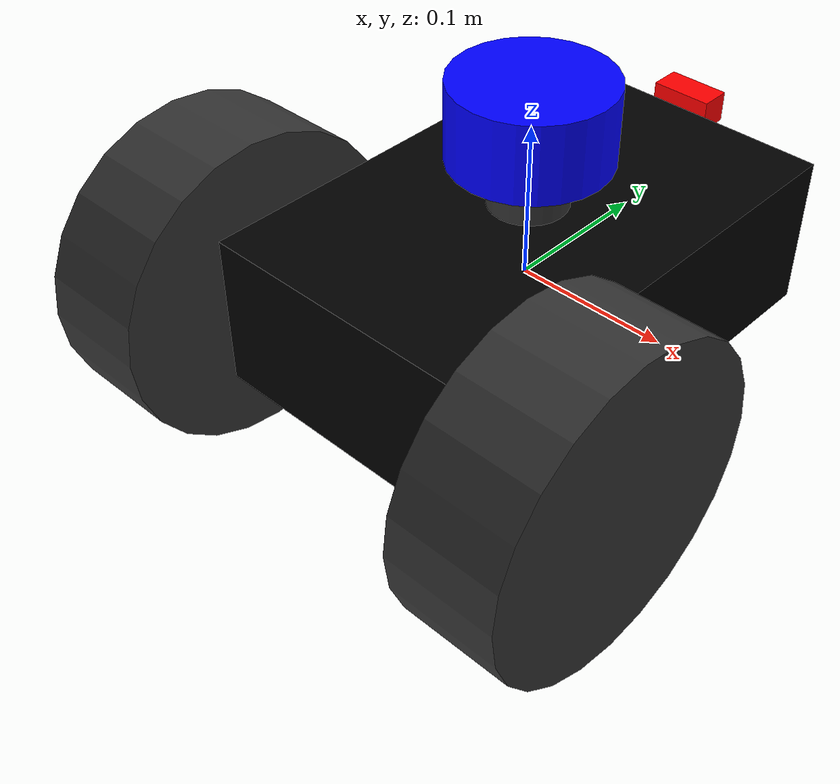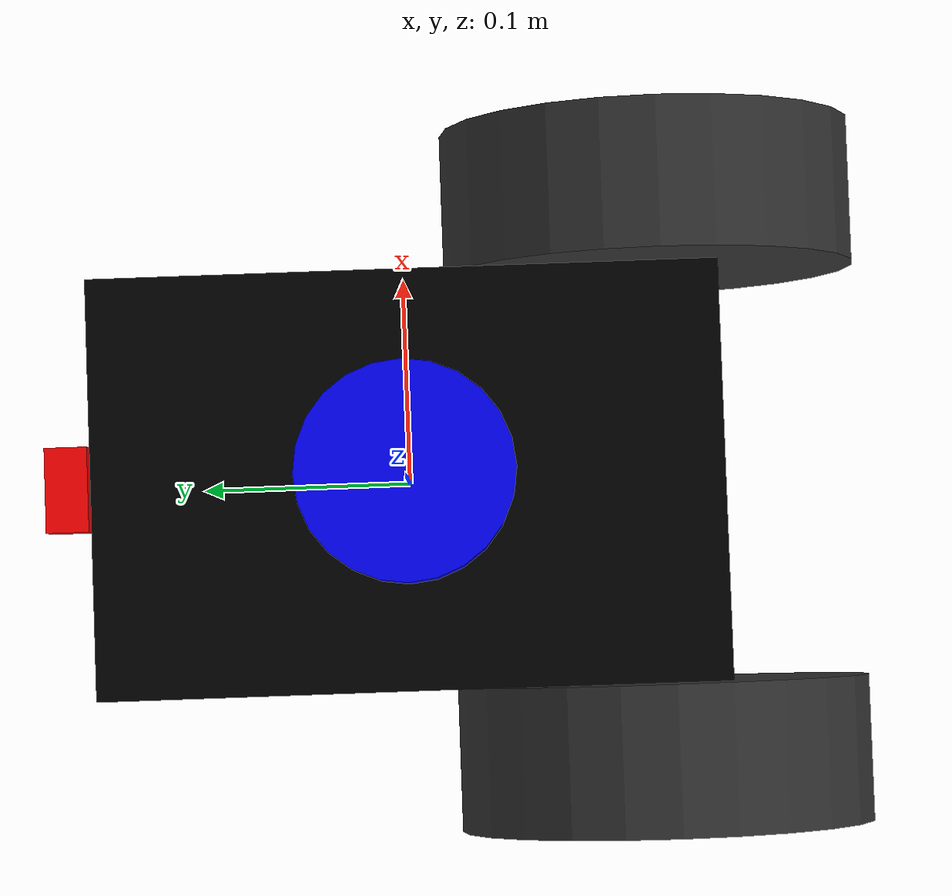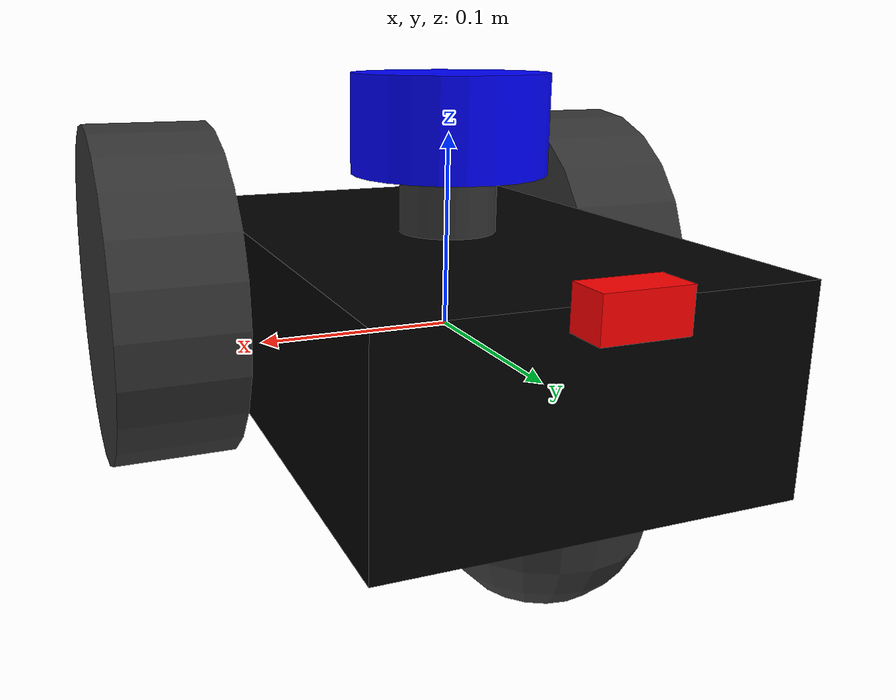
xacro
<?xml version="1.0"?>
<robot name="basic_robot" xmlns:xacro="http://www.ros.org/wiki/xacro">

  <xacro:property name="PI" value="3.1416"/>
  <material name="black">
    <color rgba="0 0 0 1"/>
  </material>
  <material name="dark">
    <color rgba="0.2 0.2 0.2 1"/>
  </material>
  <material name="red">
    <color rgba="1.0 0.0 0.0 1.0"/>
  </material>
  <material name="blue">
    <color rgba="0.0 0.0 1.0 1.0"/>
  </material>

  <xacro:property name="base_width" value="0.2"/>
  <xacro:property name="base_length" value="0.3"/>
  <xacro:property name="base_height" value="0.1"/>

  <xacro:property name="wheel_radius" value="0.1"/>
  <xacro:property name="wheel_width" value="0.07"/>

  <xacro:include filename="diff.gazebo"/>

  <link name="base_link">
    <xacro:property name="mass" value="0.9"/>
    <visual>
      <geometry>
        <box size="${base_width} ${base_length} ${base_height}"/>
      </geometry>
      <material name="black"/>
    </visual>
    <collision>
      <geometry>
        <box size="${base_width} ${base_length} ${base_height}"/>
      </geometry>
    </collision>
    <inertial>
      <mass value="${mass}"/>
      <inertia ixx="${1/12 * mass * (base_height**2 + base_length**2)}" ixy="0.0" ixz="0.0"
                    iyy="${1/12 * mass * (base_width**2 + base_height**2)}" iyz="0.0"
                         izz="${1/12 * mass * (base_width**2 + base_length**2)}"/>
      <origin xyz="0 0 0" rpy="0 0 0" />
    </inertial>
  </link>

  <xacro:macro name="insertWheel" params="posName *origin">
    <xacro:property name="mass" value="0.25"/>
    <link name="wheel${posName}">
      <visual>
        <geometry>
          <cylinder length="${wheel_width}" radius="${wheel_radius}"/>
        </geometry>
        <origin xyz="0 0 0 " rpy="0 ${PI/2} 0" />
        <material name="dark"/>
      </visual>
      <collision>
        <geometry>
          <cylinder length="${wheel_width}" radius="${wheel_radius}"/>
        </geometry>
        <origin xyz="0 0 0" rpy="0 ${PI/2} 0" />
      </collision>
      <inertial>
        <mass value="${mass}"/>
        <inertia ixx="${1/12 * mass * (3*wheel_radius**2 + wheel_width**2)}" ixy="0.0" ixz="0.0"
                      iyy="${1/12 * mass * (3*wheel_radius**2 + wheel_width**2)}" iyz="0.0"
                           izz="${1/2 * mass * wheel_radius**2}"/>
        <origin xyz="0 0 0" rpy="0 ${PI/2} 0" />
      </inertial>
    </link>
    <joint name="baseToWheel${posName}" type="continuous">
      <parent link="base_link"/>
      <child link="wheel${posName}"/>
      <xacro:insert_block name="origin"/>
      <dynamics friction="0.0001" damping="0.00005"/>
    </joint>
  </xacro:macro>

  <xacro:insertWheel posName="RearRight">
    <origin xyz="${base_width/2.0 + wheel_width/2.0} ${-base_length*0.8/2} 0" rpy="0 0 ${PI}"/>
  </xacro:insertWheel>

  <xacro:insertWheel posName="RearLeft">
    <origin xyz="${-(base_width/2.0 + wheel_width/2.0)} ${-base_length*0.8/2} 0" rpy="0 0 ${PI}"/>
  </xacro:insertWheel>

  <xacro:property name="ballRadius" value="0.05"/>

  <link name="ballcaster">
    <visual>
      <geometry>
        <sphere radius="${ballRadius}"/>
      </geometry>
      <material name="dark"/>
    </visual>
    <collision>
      <geometry>
        <sphere radius="${ballRadius}"/>
      </geometry>
    </collision>
  </link>

  <joint name="baseToBallcaster" type="fixed">
    <parent link="base_link"/>
    <child link="ballcaster"/>
    <origin xyz="0 ${base_length/2.0 - ballRadius} ${-base_height/2.0}"/>
  </joint>

  <link name="lidar">
    <xacro:property name="lidar_height" value="0.05"/>
    <xacro:property name="lidar_radius" value="0.05"/>
    <visual>
      <geometry>
        <cylinder length="${lidar_height}" radius="${lidar_radius}"/>
      </geometry>
      <material name="blue"/>
    </visual>
    <collision>
      <geometry>
        <cylinder length="${lidar_height}" radius="${lidar_radius}"/>
      </geometry>
    </collision>

    <inertial>
      <xacro:property name="lidar_mass" value="0.1"/>
      <mass value="${lidar_mass}"/>
      <inertia ixx="${1/12 * lidar_mass * (3*lidar_radius**2 + lidar_height**2)}" ixy="0.0" ixz="0.0"
                    iyy="${1/12 * lidar_mass * (3*lidar_radius**2 + lidar_height**2)}" iyz="0.0"
                         izz="${1/2 * lidar_mass * lidar_radius**2}"/>
    </inertial>
  </link>

  <joint name="baseToLidar" type="fixed">
    <axis xyz="0 1 0"/>
    <origin xyz="0 0 ${base_height/2 + lidar_height/2 + 0.03}" rpy="0 0 ${PI/2}"/>
    <parent link="base_link"/>
    <child link="lidar"/>
  </joint>

  <link name="lidar_support">
    <xacro:property name="lidar_support_height" value="0.03"/>
    <xacro:property name="lidar_support_radius" value="${lidar_radius/2.0}"/>
    <visual>
      <geometry>
        <cylinder length="${lidar_support_height}" radius="${lidar_support_radius}"/>
      </geometry>
      <material name="dark"/>
    </visual>
    <collision>
      <geometry>
        <cylinder length="0.03" radius="${lidar_support_radius}"/>
      </geometry>
    </collision>

    <inertial>
      <xacro:property name="lidar_support_mass" value="0.05"/>
      <mass value="${lidar_support_mass}"/>
      <inertia ixx="${1/12 * lidar_support_mass * (3*lidar_support_radius**2 + lidar_support_height**2)}" ixy="0.0" ixz="0.0"
                    iyy="${1/12 * lidar_support_mass * (3*lidar_support_radius**2 + lidar_support_height**2)}" iyz="0.0"
                         izz="${1/2 * lidar_support_mass * lidar_support_radius**2}"/>
    </inertial>
  </link>

  <joint name="baseToLidarSupport" type="fixed">
    <axis xyz="0 1 0"/>
    <origin xyz="0 0 ${base_height/2 + lidar_support_height/2}" rpy="0 0 ${PI/2}"/>
    <parent link="base_link"/>
    <child link="lidar_support"/>
  </joint>

  <xacro:property name="camera_size" value="0.02" />
  <link name="camera_link">
    <collision>
      <origin xyz="0 0 0" rpy="0 0 0"/>
      <geometry>
    <box size="${camera_size} ${camera_size} ${camera_size}"/>
      </geometry>
    </collision>

    <visual>
      <origin xyz="0 0 0" rpy="0 0 0"/>
      <geometry>
    <box size="${camera_size} ${2*camera_size} ${camera_size}"/>
      </geometry>
      <material name="red"/>
    </visual>

    <inertial>
      <mass value="1e-5"/>
      <origin xyz="0 0 0" rpy="0 0 0"/>
      <inertia ixx="1e-6" ixy="0" ixz="0" iyy="1e-6" iyz="0" izz="1e-6" />
    </inertial>
  </link>

  <joint name="camera_joint" type="fixed">
    <axis xyz="0 1 0"/>
    <origin xyz="0 ${base_length/2+camera_size/2} ${base_height/2}" rpy="0 0 ${PI/2}"/>
    <parent link="base_link"/>
    <child link="camera_link"/>
  </joint>

</robot>
